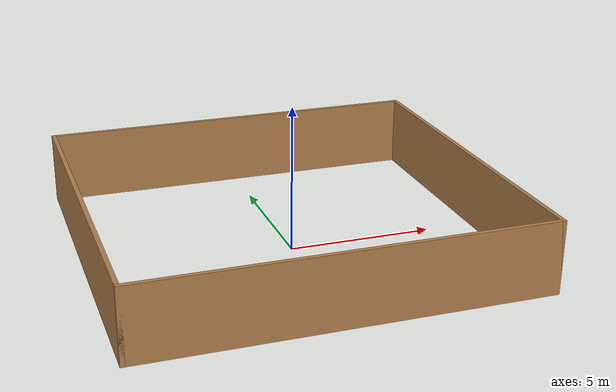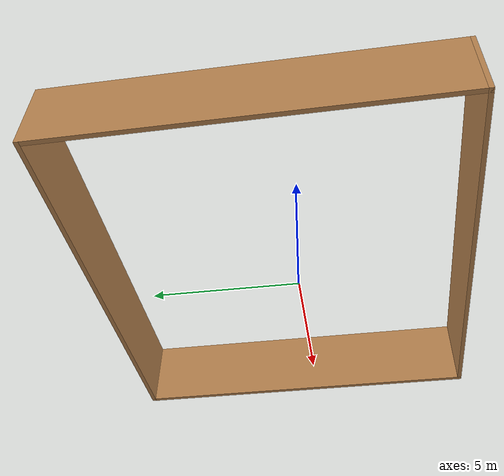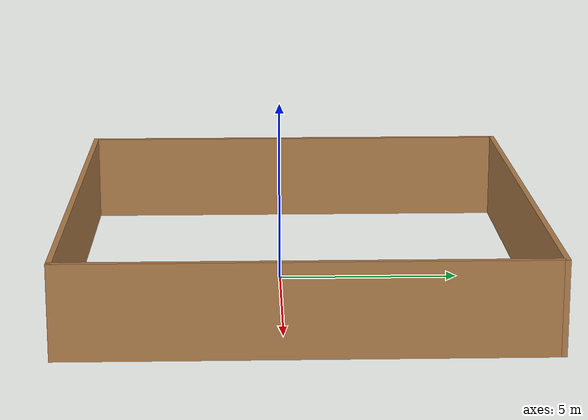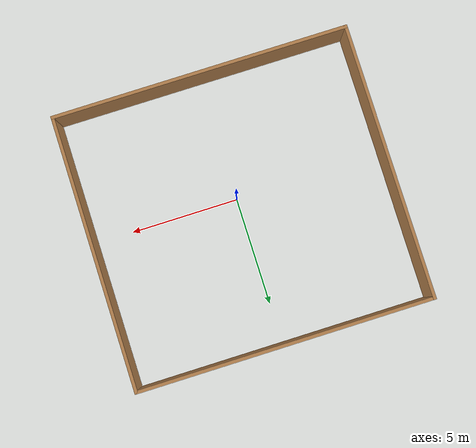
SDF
<?xml version='1.0'?>
<sdf version='1.6'>
  <model name='box_stage'>
    <pose frame=''>-0.072051 0.598109 0 0 -0 0</pose>
    <link name='Wall_22'>
      <collision name='Wall_22_Collision'>
        <geometry>
          <box>
            <size>13.75 0.15 2.5</size>
          </box>
        </geometry>
        <pose frame=''>0 0 1.25 0 -0 0</pose>
      </collision>
      <visual name='Wall_22_Visual'>
        <pose frame=''>0 0 1.25 0 -0 0</pose>
        <geometry>
          <box>
            <size>13.75 0.15 2.5</size>
          </box>
        </geometry>
        <material>
          <script>
            <uri>file://media/materials/scripts/gazebo.material</uri>
            <name>Gazebo/Wood</name>
          </script>
          <ambient>1 1 1 1</ambient>
        </material>
        <meta>
          <layer>0</layer>
        </meta>
      </visual>
      <pose frame=''>-0 -6.3 0 0 -0 0</pose>
    </link>
    <link name='Wall_23'>
      <collision name='Wall_23_Collision'>
        <geometry>
          <box>
            <size>12.75 0.15 2.5</size>
          </box>
        </geometry>
        <pose frame=''>0 0 1.25 0 -0 0</pose>
      </collision>
      <visual name='Wall_23_Visual'>
        <pose frame=''>0 0 1.25 0 -0 0</pose>
        <geometry>
          <box>
            <size>12.75 0.15 2.5</size>
          </box>
        </geometry>
        <material>
          <script>
            <uri>file://media/materials/scripts/gazebo.material</uri>
            <name>Gazebo/Wood</name>
          </script>
          <ambient>1 1 1 1</ambient>
        </material>
        <meta>
          <layer>0</layer>
        </meta>
      </visual>
      <pose frame=''>6.8 -0 0 0 -0 1.5708</pose>
    </link>
    <link name='Wall_26'>
      <collision name='Wall_26_Collision'>
        <geometry>
          <box>
            <size>12.75 0.15 2.5</size>
          </box>
        </geometry>
        <pose frame=''>0 0 1.25 0 -0 0</pose>
      </collision>
      <visual name='Wall_26_Visual'>
        <pose frame=''>0 0 1.25 0 -0 0</pose>
        <geometry>
          <box>
            <size>12.75 0.15 2.5</size>
          </box>
        </geometry>
        <material>
          <script>
            <uri>file://media/materials/scripts/gazebo.material</uri>
            <name>Gazebo/Wood</name>
          </script>
          <ambient>1 1 1 1</ambient>
        </material>
        <meta>
          <layer>0</layer>
        </meta>
      </visual>
      <pose frame=''>-6.8 -0 0 0 -0 1.5708</pose>
    </link>
    <link name='Wall_28'>
      <collision name='Wall_28_Collision'>
        <geometry>
          <box>
            <size>13.75 0.15 2.5</size>
          </box>
        </geometry>
        <pose frame=''>0 0 1.25 0 -0 0</pose>
      </collision>
      <visual name='Wall_28_Visual'>
        <pose frame=''>0 0 1.25 0 -0 0</pose>
        <geometry>
          <box>
            <size>13.75 0.15 2.5</size>
          </box>
        </geometry>
        <material>
          <script>
            <uri>file://media/materials/scripts/gazebo.material</uri>
            <name>Gazebo/Wood</name>
          </script>
          <ambient>1 1 1 1</ambient>
        </material>
        <meta>
          <layer>0</layer>
        </meta>
      </visual>
      <pose frame=''>-0 6.3 0 0 -0 0</pose>
    </link>
    <static>1</static>
  </model>
</sdf>
